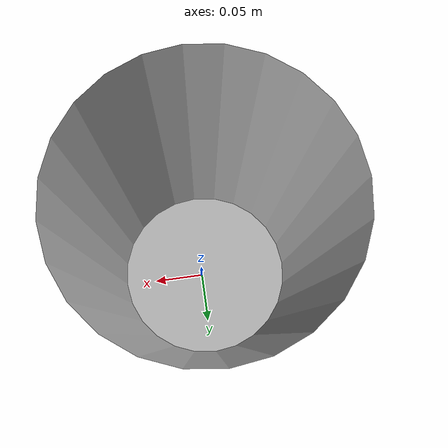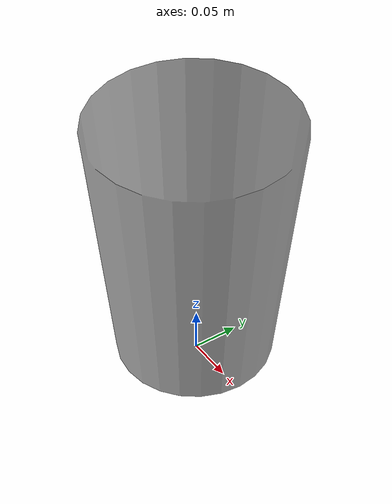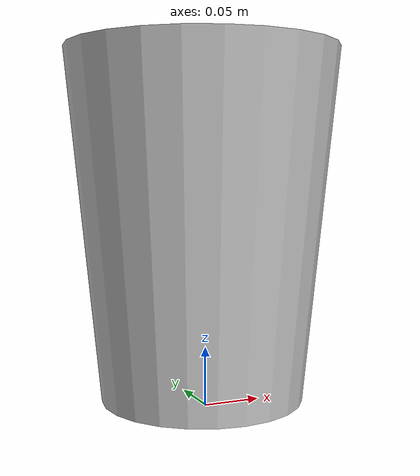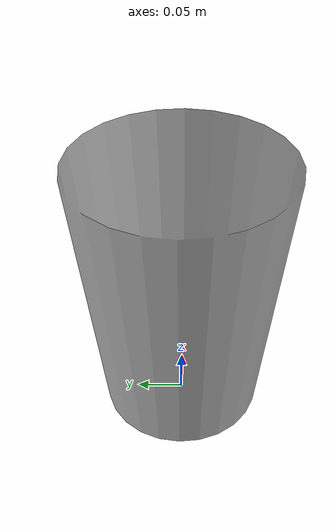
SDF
<?xml version='1.0'?>
<sdf version='1.6'>
  <model name='trash_bin'>

    <link name='link_1'>
      <pose frame=''>0 0 0 0 -0 0</pose>
       <visual name='visual'>
        <pose frame=''>0 0 0 0 -0 0</pose>
        <geometry>
          <mesh>
            <uri>model://trash_bin/meshes/inner.dae</uri>
            <scale>0.6 0.6 0.6</scale>
          </mesh>
        </geometry>
        <material>
          <lighting>1</lighting>
            <ambient>0.9 0.9 0.9 1</ambient>
          <diffuse>0.7 0.7 0.7 1</diffuse>
          <specular>0.01 0.01 0.01 1</specular>
          <emissive>0 0 0 1</emissive>
          <shader type='vertex'>
            <normal_map>__default__</normal_map>
          </shader>
        </material>
        <cast_shadows>1</cast_shadows>
        <transparency>0</transparency>
      </visual>
      <collision name='collision'>
        <laser_retro>0</laser_retro>
        <max_contacts>10</max_contacts>
        <pose frame=''>0 0 0 0 -0 0</pose>
        <geometry>
          <mesh>
            <uri>model://trash_bin/meshes/inner.dae</uri>
            <scale>0.6 0.6 0.6</scale>
          </mesh>
        </geometry>
        </collision>

      <inertial>
        <pose>0 0 0 0 0 0</pose>
        <mass>10.0</mass>
        <inertia>
          <ixx>0.01</ixx>
          <ixy>0</ixy>
          <ixz>0</ixz>
          <iyy>0.01</iyy>
          <iyz>0</iyz>
          <izz>0.01</izz>
        </inertia>
      </inertial>

    </link>

    <static>1</static>
    <allow_auto_disable>1</allow_auto_disable>
  </model>
</sdf>
